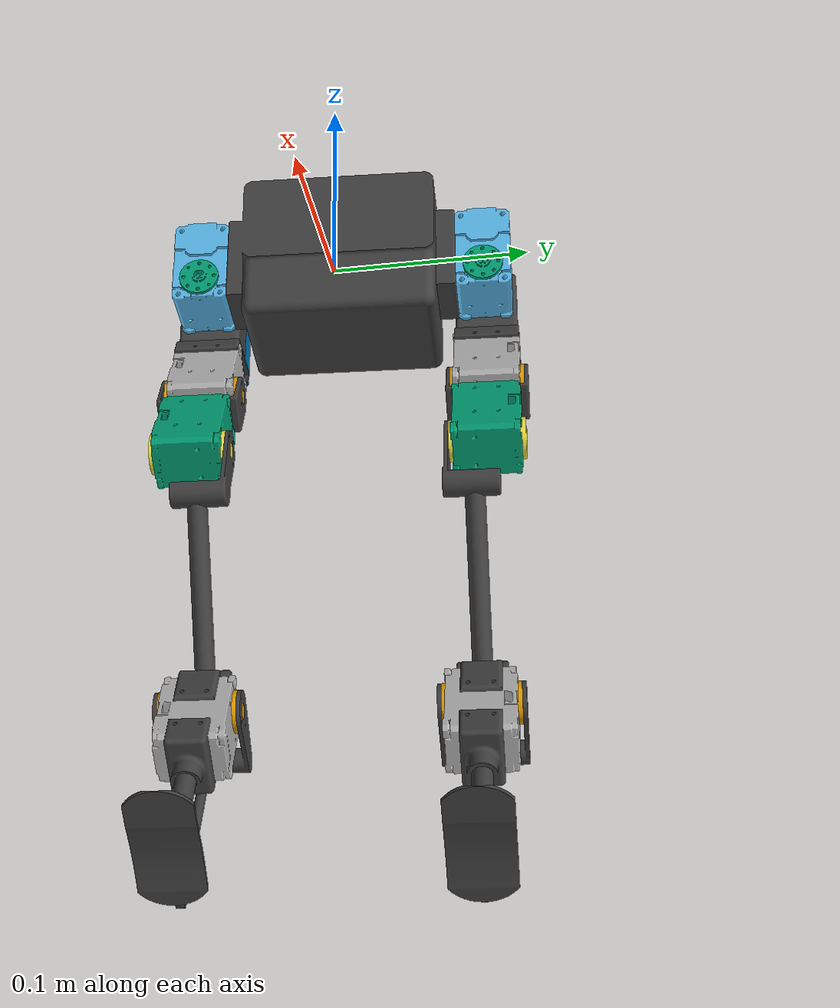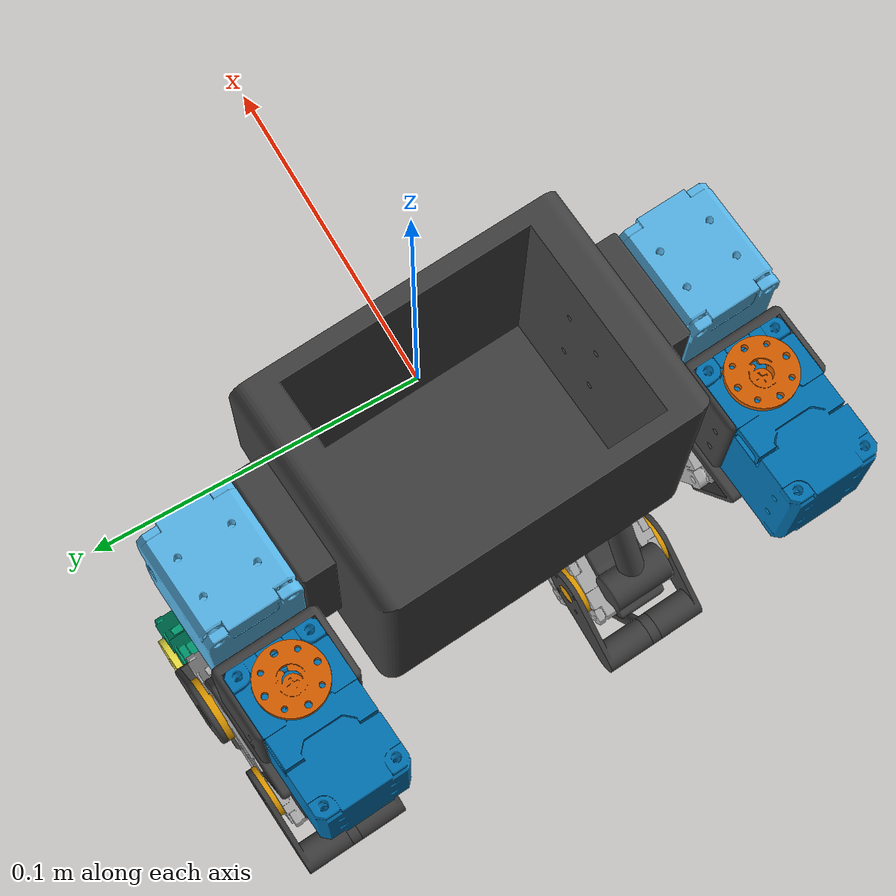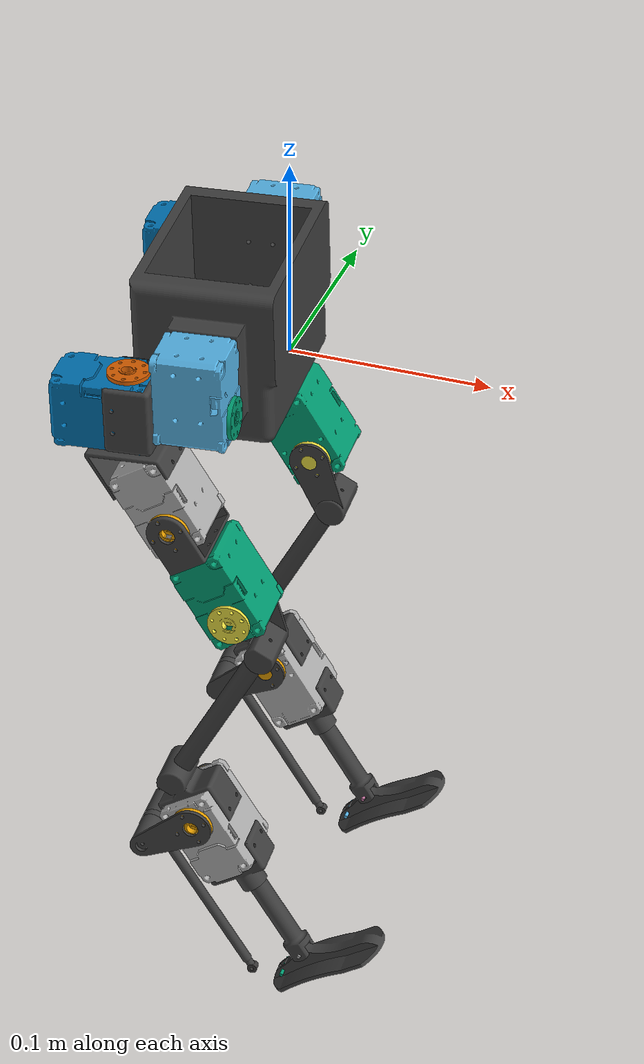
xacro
<?xml version="1.0" ?>
<robot name="bionic_biped_robot" xmlns:xacro="http://www.ros.org/wiki/xacro">

<xacro:include filename="$(find bionic_biped_robot_description)/urdf/materials.xacro" />
<xacro:include filename="$(find bionic_biped_robot_description)/urdf/bionic_biped_robot.trans" />
<link name="base_link">
  <inertial>
    <origin xyz="-0.029060836065414125 0.0002496064887810068 0.009364201848387986" rpy="0 0 0"/>
    <mass value="0.42566063723793834"/>
    <inertia ixx="0.000885" iyy="0.000452" izz="0.000847" ixy="3.1e-05" iyz="1e-06" ixz="-7e-06"/>
  </inertial>
  <visual>
    <origin xyz="0 0 0" rpy="0 0 0"/>
    <geometry>
      <mesh filename="package://bionic_biped_robot_description/meshes/base_link.stl" scale="0.001 0.001 0.001"/>
    </geometry>
    <material name="pa_11_nylon_hp_1130_eos_p_396_3d_"/>
  </visual>
  <collision>
    <origin xyz="0 0 0" rpy="0 0 0"/>
    <geometry>
      <mesh filename="package://bionic_biped_robot_description/meshes/base_link.stl" scale="0.001 0.001 0.001"/>
    </geometry>
  </collision>
</link>

<link name="R_hip_roll_xl_2">
  <inertial>
    <origin xyz="-0.004986969075831562 -0.014720577155303775 -0.015884992551365343" rpy="0 0 0"/>
    <mass value="0.040973661549071165"/>
    <inertia ixx="1e-05" iyy="1.1e-05" izz="6e-06" ixy="-0.0" iyz="-0.0" ixz="0.0"/>
  </inertial>
  <visual>
    <origin xyz="0.015186 0.058805 -0.032787" rpy="0 0 0"/>
    <geometry>
      <mesh filename="package://bionic_biped_robot_description/meshes/R_hip_roll_xl_2.stl" scale="0.001 0.001 0.001"/>
    </geometry>
    <material name=""/>
  </visual>
  <collision>
    <origin xyz="0.015186 0.058805 -0.032787" rpy="0 0 0"/>
    <geometry>
      <mesh filename="package://bionic_biped_robot_description/meshes/R_hip_roll_xl_2.stl" scale="0.001 0.001 0.001"/>
    </geometry>
  </collision>
</link>

<link name="R_hip_roll_2">
  <inertial>
    <origin xyz="0.01663231339614729 0.001207315463769884 0.0006989681967823" rpy="0 0 0"/>
    <mass value="0.001436423594975712"/>
    <inertia ixx="0.0" iyy="0.0" izz="0.0" ixy="-0.0" iyz="-0.0" ixz="-0.0"/>
  </inertial>
  <visual>
    <origin xyz="0.036253 0.074726 -0.004173" rpy="0 0 0"/>
    <geometry>
      <mesh filename="package://bionic_biped_robot_description/meshes/R_hip_roll_2.stl" scale="0.001 0.001 0.001"/>
    </geometry>
    <material name=""/>
  </visual>
  <collision>
    <origin xyz="0.036253 0.074726 -0.004173" rpy="0 0 0"/>
    <geometry>
      <mesh filename="package://bionic_biped_robot_description/meshes/R_hip_roll_2.stl" scale="0.001 0.001 0.001"/>
    </geometry>
  </collision>
</link>

<link name="hip_roll_bracket_1">
  <inertial>
    <origin xyz="-0.005977280037243966 -0.0004319145967555671 -0.00017857921335133736" rpy="0 0 0"/>
    <mass value="0.005303897131480488"/>
    <inertia ixx="1e-06" iyy="1e-06" izz="1e-06" ixy="0.0" iyz="0.0" ixz="0.0"/>
  </inertial>
  <visual>
    <origin xyz="0.038247 0.07487 -0.004114" rpy="0 0 0"/>
    <geometry>
      <mesh filename="package://bionic_biped_robot_description/meshes/hip_roll_bracket_1.stl" scale="0.001 0.001 0.001"/>
    </geometry>
    <material name="pa_11_nylon_hp_1130_eos_p_396_3d_"/>
  </visual>
  <collision>
    <origin xyz="0.038247 0.07487 -0.004114" rpy="0 0 0"/>
    <geometry>
      <mesh filename="package://bionic_biped_robot_description/meshes/hip_roll_bracket_1.stl" scale="0.001 0.001 0.001"/>
    </geometry>
  </collision>
</link>

<link name="R_hip_yaw_xl_2">
  <inertial>
    <origin xyz="-0.00699837936059209 -0.014828178635805975 -0.006687919117201799" rpy="0 0 0"/>
    <mass value="0.040973661549071165"/>
    <inertia ixx="6e-06" iyy="1.1e-05" izz="1e-05" ixy="-0.0" iyz="-0.0" ixz="-0.0"/>
  </inertial>
  <visual>
    <origin xyz="0.056649 0.061888 -0.00954" rpy="0 0 0"/>
    <geometry>
      <mesh filename="package://bionic_biped_robot_description/meshes/R_hip_yaw_xl_2.stl" scale="0.001 0.001 0.001"/>
    </geometry>
    <material name=""/>
  </visual>
  <collision>
    <origin xyz="0.056649 0.061888 -0.00954" rpy="0 0 0"/>
    <geometry>
      <mesh filename="package://bionic_biped_robot_description/meshes/R_hip_yaw_xl_2.stl" scale="0.001 0.001 0.001"/>
    </geometry>
  </collision>
</link>

<link name="R_hip_yaw_2">
  <inertial>
    <origin xyz="-0.0007017293152988338 2.2652475475268274e-05 0.016676361625966155" rpy="0 0 0"/>
    <mass value="0.001436423594975712"/>
    <inertia ixx="0.0" iyy="0.0" izz="0.0" ixy="0.0" iyz="-0.0" ixz="0.0"/>
  </inertial>
  <visual>
    <origin xyz="0.050948 0.075856 0.013273" rpy="0 0 0"/>
    <geometry>
      <mesh filename="package://bionic_biped_robot_description/meshes/R_hip_yaw_2.stl" scale="0.001 0.001 0.001"/>
    </geometry>
    <material name=""/>
  </visual>
  <collision>
    <origin xyz="0.050948 0.075856 0.013273" rpy="0 0 0"/>
    <geometry>
      <mesh filename="package://bionic_biped_robot_description/meshes/R_hip_yaw_2.stl" scale="0.001 0.001 0.001"/>
    </geometry>
  </collision>
</link>

<link name="hip_yaw_bracket_1">
  <inertial>
    <origin xyz="-0.0018463725124446412 -0.0001554031109584353 -0.005509867635975271" rpy="0 0 0"/>
    <mass value="0.0070036931272659"/>
    <inertia ixx="1e-06" iyy="1e-06" izz="2e-06" ixy="-0.0" iyz="-0.0" ixz="-0.0"/>
  </inertial>
  <visual>
    <origin xyz="0.050888 0.07586 0.015272" rpy="0 0 0"/>
    <geometry>
      <mesh filename="package://bionic_biped_robot_description/meshes/hip_yaw_bracket_1.stl" scale="0.001 0.001 0.001"/>
    </geometry>
    <material name="pa_11_nylon_hp_1130_eos_p_396_3d_"/>
  </visual>
  <collision>
    <origin xyz="0.050888 0.07586 0.015272" rpy="0 0 0"/>
    <geometry>
      <mesh filename="package://bionic_biped_robot_description/meshes/hip_yaw_bracket_1.stl" scale="0.001 0.001 0.001"/>
    </geometry>
  </collision>
</link>

<link name="R_hip_pitch_xl_2">
  <inertial>
    <origin xyz="-0.0034399795138700118 -0.005842710871260232 -0.02087660696885252" rpy="0 0 0"/>
    <mass value="0.040973661549071165"/>
    <inertia ixx="1e-05" iyy="1e-05" izz="8e-06" ixy="-0.0" iyz="0.0" ixz="2e-06"/>
  </inertial>
  <visual>
    <origin xyz="0.031688 0.068484 0.020992" rpy="0 0 0"/>
    <geometry>
      <mesh filename="package://bionic_biped_robot_description/meshes/R_hip_pitch_xl_2.stl" scale="0.001 0.001 0.001"/>
    </geometry>
    <material name=""/>
  </visual>
  <collision>
    <origin xyz="0.031688 0.068484 0.020992" rpy="0 0 0"/>
    <geometry>
      <mesh filename="package://bionic_biped_robot_description/meshes/R_hip_pitch_xl_2.stl" scale="0.001 0.001 0.001"/>
    </geometry>
  </collision>
</link>

<link name="R_hip_pitch_2">
  <inertial>
    <origin xyz="0.0010989591782883945 -0.016652782330582303 0.00024228339881331856" rpy="0 0 0"/>
    <mass value="0.001436423594975712"/>
    <inertia ixx="0.0" iyy="0.0" izz="0.0" ixy="0.0" iyz="0.0" ixz="-0.0"/>
  </inertial>
  <visual>
    <origin xyz="0.029885 0.057452 0.052346" rpy="0 0 0"/>
    <geometry>
      <mesh filename="package://bionic_biped_robot_description/meshes/R_hip_pitch_2.stl" scale="0.001 0.001 0.001"/>
    </geometry>
    <material name=""/>
  </visual>
  <collision>
    <origin xyz="0.029885 0.057452 0.052346" rpy="0 0 0"/>
    <geometry>
      <mesh filename="package://bionic_biped_robot_description/meshes/R_hip_pitch_2.stl" scale="0.001 0.001 0.001"/>
    </geometry>
  </collision>
</link>

<link name="hip_pitch_bracket_1">
  <inertial>
    <origin xyz="0.007539456611218846 -0.018546343314648363 -0.009937230800389683" rpy="0 0 0"/>
    <mass value="0.005694190208798132"/>
    <inertia ixx="2e-06" iyy="1e-06" izz="2e-06" ixy="0.0" iyz="0.0" ixz="0.0"/>
  </inertial>
  <visual>
    <origin xyz="0.030029 0.055457 0.052355" rpy="0 0 0"/>
    <geometry>
      <mesh filename="package://bionic_biped_robot_description/meshes/hip_pitch_bracket_1.stl" scale="0.001 0.001 0.001"/>
    </geometry>
    <material name="pa_11_nylon_hp_1130_eos_p_396_3d_"/>
  </visual>
  <collision>
    <origin xyz="0.030029 0.055457 0.052355" rpy="0 0 0"/>
    <geometry>
      <mesh filename="package://bionic_biped_robot_description/meshes/hip_pitch_bracket_1.stl" scale="0.001 0.001 0.001"/>
    </geometry>
  </collision>
</link>

<link name="R_knee_xl_2">
  <inertial>
    <origin xyz="0.005664421967444319 -0.005198050482948566 -0.02376056540835883" rpy="0 0 0"/>
    <mass value="0.040973661549071165"/>
    <inertia ixx="1e-05" iyy="1e-05" izz="8e-06" ixy="-0.0" iyz="0.0" ixz="2e-06"/>
  </inertial>
  <visual>
    <origin xyz="0.011949 0.067239 0.0649" rpy="0 0 0"/>
    <geometry>
      <mesh filename="package://bionic_biped_robot_description/meshes/R_knee_xl_2.stl" scale="0.001 0.001 0.001"/>
    </geometry>
    <material name=""/>
  </visual>
  <collision>
    <origin xyz="0.011949 0.067239 0.0649" rpy="0 0 0"/>
    <geometry>
      <mesh filename="package://bionic_biped_robot_description/meshes/R_knee_xl_2.stl" scale="0.001 0.001 0.001"/>
    </geometry>
  </collision>
</link>

<link name="R_knee_2">
  <inertial>
    <origin xyz="0.0010983606596026325 -0.01665312194227056 0.00024232495930738562" rpy="0 0 0"/>
    <mass value="0.001436423594975712"/>
    <inertia ixx="0.0" iyy="0.0" izz="0.0" ixy="0.0" iyz="0.0" ixz="-0.0"/>
  </inertial>
  <visual>
    <origin xyz="0.001041 0.055562 0.099138" rpy="0 0 0"/>
    <geometry>
      <mesh filename="package://bionic_biped_robot_description/meshes/R_knee_2.stl" scale="0.001 0.001 0.001"/>
    </geometry>
    <material name=""/>
  </visual>
  <collision>
    <origin xyz="0.001041 0.055562 0.099138" rpy="0 0 0"/>
    <geometry>
      <mesh filename="package://bionic_biped_robot_description/meshes/R_knee_2.stl" scale="0.001 0.001 0.001"/>
    </geometry>
  </collision>
</link>

<link name="knee_r_brecket_1">
  <inertial>
    <origin xyz="0.009879615617338428 -0.007544867889285538 -0.023592524067663698" rpy="0 0 0"/>
    <mass value="0.00786109169007575"/>
    <inertia ixx="1e-06" iyy="1e-06" izz="1e-06" ixy="0.0" iyz="-0.0" ixz="0.0"/>
  </inertial>
  <visual>
    <origin xyz="0.001185 0.053567 0.099146" rpy="0 0 0"/>
    <geometry>
      <mesh filename="package://bionic_biped_robot_description/meshes/knee_r_brecket_1.stl" scale="0.001 0.001 0.001"/>
    </geometry>
    <material name="pa_11_nylon_hp_1130_eos_p_396_3d_"/>
  </visual>
  <collision>
    <origin xyz="0.001185 0.053567 0.099146" rpy="0 0 0"/>
    <geometry>
      <mesh filename="package://bionic_biped_robot_description/meshes/knee_r_brecket_1.stl" scale="0.001 0.001 0.001"/>
    </geometry>
  </collision>
</link>

<link name="leg_upper_1">
  <inertial>
    <origin xyz="-0.023627209371366004 -0.0018812413574959413 -0.04402500093082774" rpy="0 0 0"/>
    <mass value="0.012719491840295135"/>
    <inertia ixx="8e-06" iyy="1.1e-05" izz="3e-06" ixy="-0.0" iyz="-0.0" ixz="-4e-06"/>
  </inertial>
  <visual>
    <origin xyz="-0.011989 0.065254 0.124731" rpy="0 0 0"/>
    <geometry>
      <mesh filename="package://bionic_biped_robot_description/meshes/leg_upper_1.stl" scale="0.001 0.001 0.001"/>
    </geometry>
    <material name="pa_11_nylon_hp_1130_eos_p_396_3d_"/>
  </visual>
  <collision>
    <origin xyz="-0.011989 0.065254 0.124731" rpy="0 0 0"/>
    <geometry>
      <mesh filename="package://bionic_biped_robot_description/meshes/leg_upper_1.stl" scale="0.001 0.001 0.001"/>
    </geometry>
  </collision>
</link>

<link name="lower_knee_link_2">
  <inertial>
    <origin xyz="0.005339367105491769 0.0003737553050349868 -0.003361608401626831" rpy="0 0 0"/>
    <mass value="0.010036812614450108"/>
    <inertia ixx="1e-06" iyy="2e-06" izz="1e-06" ixy="-0.0" iyz="0.0" ixz="0.0"/>
  </inertial>
  <visual>
    <origin xyz="0.035265 0.069017 0.212781" rpy="0 0 0"/>
    <geometry>
      <mesh filename="package://bionic_biped_robot_description/meshes/lower_knee_link_2.stl" scale="0.001 0.001 0.001"/>
    </geometry>
    <material name="pa_11_nylon_hp_1130_eos_p_396_3d_"/>
  </visual>
  <collision>
    <origin xyz="0.035265 0.069017 0.212781" rpy="0 0 0"/>
    <geometry>
      <mesh filename="package://bionic_biped_robot_description/meshes/lower_knee_link_2.stl" scale="0.001 0.001 0.001"/>
    </geometry>
  </collision>
</link>

<link name="R_ankle_xl_2">
  <inertial>
    <origin xyz="0.0023780861009838963 -0.14124865844405804 -0.013927734264633257" rpy="0 0 0"/>
    <mass value="0.040973661549071165"/>
    <inertia ixx="1e-05" iyy="1e-05" izz="8e-06" ixy="-0.0" iyz="0.0" ixz="2e-06"/>
  </inertial>
  <visual>
    <origin xyz="0.017665 -0.073986 0.225119" rpy="0 0 0"/>
    <geometry>
      <mesh filename="package://bionic_biped_robot_description/meshes/R_ankle_xl_2.stl" scale="0.001 0.001 0.001"/>
    </geometry>
    <material name=""/>
  </visual>
  <collision>
    <origin xyz="0.017665 -0.073986 0.225119" rpy="0 0 0"/>
    <geometry>
      <mesh filename="package://bionic_biped_robot_description/meshes/R_ankle_xl_2.stl" scale="0.001 0.001 0.001"/>
    </geometry>
  </collision>
</link>

<link name="R_ankle_2">
  <inertial>
    <origin xyz="0.0013009380681431246 -0.016640129255585098 -0.00010806382592756791" rpy="0 0 0"/>
    <mass value="0.001436423594975712"/>
    <inertia ixx="0.0" iyy="0.0" izz="0.0" ixy="0.0" iyz="-0.0" ixz="0.0"/>
  </inertial>
  <visual>
    <origin xyz="0.022902 0.05123 0.228702" rpy="0 0 0"/>
    <geometry>
      <mesh filename="package://bionic_biped_robot_description/meshes/R_ankle_2.stl" scale="0.001 0.001 0.001"/>
    </geometry>
    <material name=""/>
  </visual>
  <collision>
    <origin xyz="0.022902 0.05123 0.228702" rpy="0 0 0"/>
    <geometry>
      <mesh filename="package://bionic_biped_robot_description/meshes/R_ankle_2.stl" scale="0.001 0.001 0.001"/>
    </geometry>
  </collision>
</link>

<link name="ankle_link_1_2">
  <inertial>
    <origin xyz="-0.01961971128153585 -0.009167995860988223 -0.012464484549498916" rpy="0 0 0"/>
    <mass value="0.006084906833817184"/>
    <inertia ixx="1e-06" iyy="1e-06" izz="1e-06" ixy="-0.0" iyz="-0.0" ixz="-0.0"/>
  </inertial>
  <visual>
    <origin xyz="0.023046 0.049236 0.22871" rpy="0 0 0"/>
    <geometry>
      <mesh filename="package://bionic_biped_robot_description/meshes/ankle_link_1_2.stl" scale="0.001 0.001 0.001"/>
    </geometry>
    <material name="pa_11_nylon_hp_1130_eos_p_396_3d_"/>
  </visual>
  <collision>
    <origin xyz="0.023046 0.049236 0.22871" rpy="0 0 0"/>
    <geometry>
      <mesh filename="package://bionic_biped_robot_description/meshes/ankle_link_1_2.stl" scale="0.001 0.001 0.001"/>
    </geometry>
  </collision>
</link>

<link name="ankle_link_2_2">
  <inertial>
    <origin xyz="-0.018515364831153396 0.002677892138265192 -0.011304909272308539" rpy="0 0 0"/>
    <mass value="0.004445165114646534"/>
    <inertia ixx="0.0" iyy="1e-06" izz="1e-06" ixy="0.0" iyz="0.0" ixz="-0.0"/>
  </inertial>
  <visual>
    <origin xyz="0.020314 0.087137 0.228557" rpy="0 0 0"/>
    <geometry>
      <mesh filename="package://bionic_biped_robot_description/meshes/ankle_link_2_2.stl" scale="0.001 0.001 0.001"/>
    </geometry>
    <material name="pa_11_nylon_hp_1130_eos_p_396_3d_"/>
  </visual>
  <collision>
    <origin xyz="0.020314 0.087137 0.228557" rpy="0 0 0"/>
    <geometry>
      <mesh filename="package://bionic_biped_robot_description/meshes/ankle_link_2_2.stl" scale="0.001 0.001 0.001"/>
    </geometry>
  </collision>
</link>

<link name="R_bionic_biped_robot_ankle_bar_1">
  <inertial>
    <origin xyz="0.031959950767911874 -0.1356965791043112 -0.035255068475129575" rpy="0 0 0"/>
    <mass value="0.003337002701996774"/>
    <inertia ixx="2e-06" iyy="3e-06" izz="1e-06" ixy="-0.0" iyz="0.0" ixz="1e-06"/>
  </inertial>
  <visual>
    <origin xyz="0.057018 -0.067058 0.244955" rpy="0 0 0"/>
    <geometry>
      <mesh filename="package://bionic_biped_robot_description/meshes/R_bionic_biped_robot_ankle_bar_1.stl" scale="0.001 0.001 0.001"/>
    </geometry>
    <material name="pa_11_nylon_hp_1130_eos_p_396_3d_"/>
  </visual>
  <collision>
    <origin xyz="0.057018 -0.067058 0.244955" rpy="0 0 0"/>
    <geometry>
      <mesh filename="package://bionic_biped_robot_description/meshes/R_bionic_biped_robot_ankle_bar_1.stl" scale="0.001 0.001 0.001"/>
    </geometry>
  </collision>
</link>

<link name="R_ankle_bar_parts_1">
  <inertial>
    <origin xyz="0.00014428021092786425 -0.001994497521576738 8.022236874460908e-06" rpy="0 0 0"/>
    <mass value="0.0001072728227494817"/>
    <inertia ixx="0.0" iyy="0.0" izz="0.0" ixy="-0.0" iyz="-0.0" ixz="0.0"/>
  </inertial>
  <visual>
    <origin xyz="-0.003742 0.064746 0.327174" rpy="0 0 0"/>
    <geometry>
      <mesh filename="package://bionic_biped_robot_description/meshes/R_ankle_bar_parts_1.stl" scale="0.001 0.001 0.001"/>
    </geometry>
    <material name="_"/>
  </visual>
  <collision>
    <origin xyz="-0.003742 0.064746 0.327174" rpy="0 0 0"/>
    <geometry>
      <mesh filename="package://bionic_biped_robot_description/meshes/R_ankle_bar_parts_1.stl" scale="0.001 0.001 0.001"/>
    </geometry>
  </collision>
</link>

<link name="lower_link_1">
  <inertial>
    <origin xyz="-0.0064653639832924275 -0.006542113788295889 -0.015891072697331005" rpy="0 0 0"/>
    <mass value="0.008544769707383056"/>
    <inertia ixx="1e-06" iyy="1e-06" izz="1e-06" ixy="-0.0" iyz="-0.0" ixz="-0.0"/>
  </inertial>
  <visual>
    <origin xyz="-0.004663 0.060338 0.24499" rpy="0 0 0"/>
    <geometry>
      <mesh filename="package://bionic_biped_robot_description/meshes/lower_link_1.stl" scale="0.001 0.001 0.001"/>
    </geometry>
    <material name="pa_11_nylon_hp_1130_eos_p_396_3d_"/>
  </visual>
  <collision>
    <origin xyz="-0.004663 0.060338 0.24499" rpy="0 0 0"/>
    <geometry>
      <mesh filename="package://bionic_biped_robot_description/meshes/lower_link_1.stl" scale="0.001 0.001 0.001"/>
    </geometry>
  </collision>
</link>

<link name="leg_lower_2">
  <inertial>
    <origin xyz="0.016577282937612937 0.0010941529441703401 -0.024991797663463378" rpy="0 0 0"/>
    <mass value="0.007702697584770665"/>
    <inertia ixx="2e-06" iyy="2e-06" izz="1e-06" ixy="-0.0" iyz="0.0" ixz="1e-06"/>
  </inertial>
  <visual>
    <origin xyz="0.001098 0.066806 0.262026" rpy="0 0 0"/>
    <geometry>
      <mesh filename="package://bionic_biped_robot_description/meshes/leg_lower_2.stl" scale="0.001 0.001 0.001"/>
    </geometry>
    <material name="pa_11_nylon_hp_1130_eos_p_396_3d_"/>
  </visual>
  <collision>
    <origin xyz="0.001098 0.066806 0.262026" rpy="0 0 0"/>
    <geometry>
      <mesh filename="package://bionic_biped_robot_description/meshes/leg_lower_2.stl" scale="0.001 0.001 0.001"/>
    </geometry>
  </collision>
</link>

<link name="shaft_1">
  <inertial>
    <origin xyz="0.011021198643625819 -0.14106897092774662 0.001096999932918341" rpy="0 0 0"/>
    <mass value="5.79273242847201e-05"/>
    <inertia ixx="0.0" iyy="0.0" izz="0.0" ixy="0.0" iyz="0.0" ixz="-0.0"/>
  </inertial>
  <visual>
    <origin xyz="-0.018621 -0.076285 0.311091" rpy="0 0 0"/>
    <geometry>
      <mesh filename="package://bionic_biped_robot_description/meshes/shaft_1.stl" scale="0.001 0.001 0.001"/>
    </geometry>
    <material name=""/>
  </visual>
  <collision>
    <origin xyz="-0.018621 -0.076285 0.311091" rpy="0 0 0"/>
    <geometry>
      <mesh filename="package://bionic_biped_robot_description/meshes/shaft_1.stl" scale="0.001 0.001 0.001"/>
    </geometry>
  </collision>
</link>

<link name="foot_1">
  <inertial>
    <origin xyz="0.012733500599400645 -0.00610941412659672 -0.002202016875568147" rpy="0 0 0"/>
    <mass value="0.009360295877442892"/>
    <inertia ixx="1e-06" iyy="3e-06" izz="2e-06" ixy="-0.0" iyz="-0.0" ixz="-1e-06"/>
  </inertial>
  <visual>
    <origin xyz="-0.029139 0.057802 0.310022" rpy="0 0 0"/>
    <geometry>
      <mesh filename="package://bionic_biped_robot_description/meshes/foot_1.stl" scale="0.001 0.001 0.001"/>
    </geometry>
    <material name="pa_11_nylon_hp_1130_eos_p_396_3d_"/>
  </visual>
  <collision>
    <origin xyz="-0.029139 0.057802 0.310022" rpy="0 0 0"/>
    <geometry>
      <mesh filename="package://bionic_biped_robot_description/meshes/foot_1.stl" scale="0.001 0.001 0.001"/>
    </geometry>
  </collision>
</link>

<link name="L_hip_roll_xl_2">
  <inertial>
    <origin xyz="-0.007035358994863367 0.013704923001309606 -0.016000610474206135" rpy="0 0 0"/>
    <mass value="0.040973661549071165"/>
    <inertia ixx="1e-05" iyy="1.1e-05" izz="6e-06" ixy="-0.0" iyz="-0.0" ixz="0.0"/>
  </inertial>
  <visual>
    <origin xyz="0.023814 -0.060884 -0.032303" rpy="0 0 0"/>
    <geometry>
      <mesh filename="package://bionic_biped_robot_description/meshes/L_hip_roll_xl_2.stl" scale="0.001 0.001 0.001"/>
    </geometry>
    <material name=""/>
  </visual>
  <collision>
    <origin xyz="0.023814 -0.060884 -0.032303" rpy="0 0 0"/>
    <geometry>
      <mesh filename="package://bionic_biped_robot_description/meshes/L_hip_roll_xl_2.stl" scale="0.001 0.001 0.001"/>
    </geometry>
  </collision>
</link>

<link name="L_hip_roll_2">
  <inertial>
    <origin xyz="0.01663292347711554 0.0012078156203833013 0.0006983502739413925" rpy="0 0 0"/>
    <mass value="0.001436423594975712"/>
    <inertia ixx="0.0" iyy="0.0" izz="0.0" ixy="-0.0" iyz="-0.0" ixz="-0.0"/>
  </inertial>
  <visual>
    <origin xyz="0.04693 -0.073388 -0.003574" rpy="0 0 0"/>
    <geometry>
      <mesh filename="package://bionic_biped_robot_description/meshes/L_hip_roll_2.stl" scale="0.001 0.001 0.001"/>
    </geometry>
    <material name=""/>
  </visual>
  <collision>
    <origin xyz="0.04693 -0.073388 -0.003574" rpy="0 0 0"/>
    <geometry>
      <mesh filename="package://bionic_biped_robot_description/meshes/L_hip_roll_2.stl" scale="0.001 0.001 0.001"/>
    </geometry>
  </collision>
</link>

<link name="hip_roll_bracket_2">
  <inertial>
    <origin xyz="-0.005977669956275557 -0.000431414440142025 -0.000178197136192256" rpy="0 0 0"/>
    <mass value="0.005303897131480488"/>
    <inertia ixx="1e-06" iyy="1e-06" izz="1e-06" ixy="0.0" iyz="0.0" ixz="0.0"/>
  </inertial>
  <visual>
    <origin xyz="0.048923 -0.073244 -0.003514" rpy="0 0 0"/>
    <geometry>
      <mesh filename="package://bionic_biped_robot_description/meshes/hip_roll_bracket_2.stl" scale="0.001 0.001 0.001"/>
    </geometry>
    <material name="pa_11_nylon_hp_1130_eos_p_396_3d_"/>
  </visual>
  <collision>
    <origin xyz="0.048923 -0.073244 -0.003514" rpy="0 0 0"/>
    <geometry>
      <mesh filename="package://bionic_biped_robot_description/meshes/hip_roll_bracket_2.stl" scale="0.001 0.001 0.001"/>
    </geometry>
  </collision>
</link>

<link name="L_hip_yow_xl_2">
  <inertial>
    <origin xyz="-0.01972376927962364 0.16171232152080728 -0.007402537040042885" rpy="0 0 0"/>
    <mass value="0.040973661549071165"/>
    <inertia ixx="6e-06" iyy="1.1e-05" izz="1e-05" ixy="-0.0" iyz="-0.0" ixz="-0.0"/>
  </inertial>
  <visual>
    <origin xyz="0.0546 0.090314 -0.009655" rpy="0 0 0"/>
    <geometry>
      <mesh filename="package://bionic_biped_robot_description/meshes/L_hip_yow_xl_2.stl" scale="0.001 0.001 0.001"/>
    </geometry>
    <material name=""/>
  </visual>
  <collision>
    <origin xyz="0.0546 0.090314 -0.009655" rpy="0 0 0"/>
    <geometry>
      <mesh filename="package://bionic_biped_robot_description/meshes/L_hip_yow_xl_2.stl" scale="0.001 0.001 0.001"/>
    </geometry>
  </collision>
</link>

<link name="L_hip_yow_2">
  <inertial>
    <origin xyz="-0.0007021192343301744 2.31526320890324e-05 0.016675743703124895" rpy="0 0 0"/>
    <mass value="0.001436423594975712"/>
    <inertia ixx="0.0" iyy="0.0" izz="0.0" ixy="0.0" iyz="-0.0" ixz="0.0"/>
  </inertial>
  <visual>
    <origin xyz="0.061624 -0.072258 0.013872" rpy="0 0 0"/>
    <geometry>
      <mesh filename="package://bionic_biped_robot_description/meshes/L_hip_yow_2.stl" scale="0.001 0.001 0.001"/>
    </geometry>
    <material name=""/>
  </visual>
  <collision>
    <origin xyz="0.061624 -0.072258 0.013872" rpy="0 0 0"/>
    <geometry>
      <mesh filename="package://bionic_biped_robot_description/meshes/L_hip_yow_2.stl" scale="0.001 0.001 0.001"/>
    </geometry>
  </collision>
</link>

<link name="hip_yaw_bracket_2">
  <inertial>
    <origin xyz="-0.0018467624314757111 -0.00015590295434435297 -0.005510485558816482" rpy="0 0 0"/>
    <mass value="0.0070036931272659"/>
    <inertia ixx="1e-06" iyy="1e-06" izz="2e-06" ixy="-0.0" iyz="-0.0" ixz="-0.0"/>
  </inertial>
  <visual>
    <origin xyz="0.061564 -0.072255 0.015871" rpy="0 0 0"/>
    <geometry>
      <mesh filename="package://bionic_biped_robot_description/meshes/hip_yaw_bracket_2.stl" scale="0.001 0.001 0.001"/>
    </geometry>
    <material name="pa_11_nylon_hp_1130_eos_p_396_3d_"/>
  </visual>
  <collision>
    <origin xyz="0.061564 -0.072255 0.015871" rpy="0 0 0"/>
    <geometry>
      <mesh filename="package://bionic_biped_robot_description/meshes/hip_yaw_bracket_2.stl" scale="0.001 0.001 0.001"/>
    </geometry>
  </collision>
</link>

<link name="L_hip_pitch_xl_2">
  <inertial>
    <origin xyz="-0.014890326953640929 0.15323635688222426 -0.02151086042531752" rpy="0 0 0"/>
    <mass value="0.040973661549071165"/>
    <inertia ixx="1e-05" iyy="1e-05" izz="8e-06" ixy="-0.0" iyz="0.0" ixz="2e-06"/>
  </inertial>
  <visual>
    <origin xyz="0.030825 0.080452 0.020943" rpy="0 0 0"/>
    <geometry>
      <mesh filename="package://bionic_biped_robot_description/meshes/L_hip_pitch_xl_2.stl" scale="0.001 0.001 0.001"/>
    </geometry>
    <material name=""/>
  </visual>
  <collision>
    <origin xyz="0.030825 0.080452 0.020943" rpy="0 0 0"/>
    <geometry>
      <mesh filename="package://bionic_biped_robot_description/meshes/L_hip_pitch_xl_2.stl" scale="0.001 0.001 0.001"/>
    </geometry>
  </collision>
</link>

<link name="L_hip_pitch_2">
  <inertial>
    <origin xyz="-0.0013108933396089942 0.01663883507412956 0.00010192141907762464" rpy="0 0 0"/>
    <mass value="0.001436423594975712"/>
    <inertia ixx="0.0" iyy="0.0" izz="0.0" ixy="0.0" iyz="-0.0" ixz="0.0"/>
  </inertial>
  <visual>
    <origin xyz="0.038117 -0.056751 0.052809" rpy="0 0 0"/>
    <geometry>
      <mesh filename="package://bionic_biped_robot_description/meshes/L_hip_pitch_2.stl" scale="0.001 0.001 0.001"/>
    </geometry>
    <material name=""/>
  </visual>
  <collision>
    <origin xyz="0.038117 -0.056751 0.052809" rpy="0 0 0"/>
    <geometry>
      <mesh filename="package://bionic_biped_robot_description/meshes/L_hip_pitch_2.stl" scale="0.001 0.001 0.001"/>
    </geometry>
  </collision>
</link>

<link name="hip_pitch_bracket_2">
  <inertial>
    <origin xyz="0.0048070666921878405 0.019355156841966065 -0.010090848723229504" rpy="0 0 0"/>
    <mass value="0.005694190208798132"/>
    <inertia ixx="2e-06" iyy="1e-06" izz="2e-06" ixy="0.0" iyz="0.0" ixz="0.0"/>
  </inertial>
  <visual>
    <origin xyz="0.037973 -0.054756 0.052801" rpy="0 0 0"/>
    <geometry>
      <mesh filename="package://bionic_biped_robot_description/meshes/hip_pitch_bracket_2.stl" scale="0.001 0.001 0.001"/>
    </geometry>
    <material name="pa_11_nylon_hp_1130_eos_p_396_3d_"/>
  </visual>
  <collision>
    <origin xyz="0.037973 -0.054756 0.052801" rpy="0 0 0"/>
    <geometry>
      <mesh filename="package://bionic_biped_robot_description/meshes/hip_pitch_bracket_2.stl" scale="0.001 0.001 0.001"/>
    </geometry>
  </collision>
</link>

<link name="L_knee_xl_2">
  <inertial>
    <origin xyz="-0.005784925472326147 0.15388101727053538 -0.024393818864822753" rpy="0 0 0"/>
    <mass value="0.040973661549071165"/>
    <inertia ixx="1e-05" iyy="1e-05" izz="8e-06" ixy="-0.0" iyz="0.0" ixz="2e-06"/>
  </inertial>
  <visual>
    <origin xyz="0.011087 0.079207 0.064852" rpy="0 0 0"/>
    <geometry>
      <mesh filename="package://bionic_biped_robot_description/meshes/L_knee_xl_2.stl" scale="0.001 0.001 0.001"/>
    </geometry>
    <material name=""/>
  </visual>
  <collision>
    <origin xyz="0.011087 0.079207 0.064852" rpy="0 0 0"/>
    <geometry>
      <mesh filename="package://bionic_biped_robot_description/meshes/L_knee_xl_2.stl" scale="0.001 0.001 0.001"/>
    </geometry>
  </collision>
</link>

<link name="L_knee_2">
  <inertial>
    <origin xyz="-0.001311491858294345 0.016638495462440908 0.00010196297957255906" rpy="0 0 0"/>
    <mass value="0.001436423594975712"/>
    <inertia ixx="0.0" iyy="0.0" izz="0.0" ixy="0.0" iyz="-0.0" ixz="0.0"/>
  </inertial>
  <visual>
    <origin xyz="0.009273 -0.058641 0.099601" rpy="0 0 0"/>
    <geometry>
      <mesh filename="package://bionic_biped_robot_description/meshes/L_knee_2.stl" scale="0.001 0.001 0.001"/>
    </geometry>
    <material name=""/>
  </visual>
  <collision>
    <origin xyz="0.009273 -0.058641 0.099601" rpy="0 0 0"/>
    <geometry>
      <mesh filename="package://bionic_biped_robot_description/meshes/L_knee_2.stl" scale="0.001 0.001 0.001"/>
    </geometry>
  </collision>
</link>

<link name="knee_l_bracket_1">
  <inertial>
    <origin xyz="0.008709796933786283 0.008692816618159599 -0.023657439489187984" rpy="0 0 0"/>
    <mass value="0.007861091690075749"/>
    <inertia ixx="1e-06" iyy="1e-06" izz="1e-06" ixy="-0.0" iyz="0.0" ixz="0.0"/>
  </inertial>
  <visual>
    <origin xyz="0.00913 -0.056646 0.099593" rpy="0 0 0"/>
    <geometry>
      <mesh filename="package://bionic_biped_robot_description/meshes/knee_l_bracket_1.stl" scale="0.001 0.001 0.001"/>
    </geometry>
    <material name="pa_11_nylon_hp_1130_eos_p_396_3d_"/>
  </visual>
  <collision>
    <origin xyz="0.00913 -0.056646 0.099593" rpy="0 0 0"/>
    <geometry>
      <mesh filename="package://bionic_biped_robot_description/meshes/knee_l_bracket_1.stl" scale="0.001 0.001 0.001"/>
    </geometry>
  </collision>
</link>

<link name="leg_upper_2">
  <inertial>
    <origin xyz="-0.02362696582947057 -0.001880993739845585 -0.04402512704897532" rpy="0 0 0"/>
    <mass value="0.012719491840295135"/>
    <inertia ixx="8e-06" iyy="1.1e-05" izz="3e-06" ixy="-0.0" iyz="-0.0" ixz="-4e-06"/>
  </inertial>
  <visual>
    <origin xyz="-0.002247 -0.069894 0.125278" rpy="0 0 0"/>
    <geometry>
      <mesh filename="package://bionic_biped_robot_description/meshes/leg_upper_2.stl" scale="0.001 0.001 0.001"/>
    </geometry>
    <material name="pa_11_nylon_hp_1130_eos_p_396_3d_"/>
  </visual>
  <collision>
    <origin xyz="-0.002247 -0.069894 0.125278" rpy="0 0 0"/>
    <geometry>
      <mesh filename="package://bionic_biped_robot_description/meshes/leg_upper_2.stl" scale="0.001 0.001 0.001"/>
    </geometry>
  </collision>
</link>

<link name="lower_knee_link_1">
  <inertial>
    <origin xyz="-0.004402389352612182 0.13552200292268426 -0.00390873451977361" rpy="0 0 0"/>
    <mass value="0.010036812614450108"/>
    <inertia ixx="1e-06" iyy="2e-06" izz="1e-06" ixy="-0.0" iyz="0.0" ixz="0.0"/>
  </inertial>
  <visual>
    <origin xyz="0.035265 0.069017 0.212781" rpy="0 0 0"/>
    <geometry>
      <mesh filename="package://bionic_biped_robot_description/meshes/lower_knee_link_1.stl" scale="0.001 0.001 0.001"/>
    </geometry>
    <material name="pa_11_nylon_hp_1130_eos_p_396_3d_"/>
  </visual>
  <collision>
    <origin xyz="0.035265 0.069017 0.212781" rpy="0 0 0"/>
    <geometry>
      <mesh filename="package://bionic_biped_robot_description/meshes/lower_knee_link_1.stl" scale="0.001 0.001 0.001"/>
    </geometry>
  </collision>
</link>

<link name="L_ankle_xl_2">
  <inertial>
    <origin xyz="-0.008169875243508144 0.004862676860505885 -0.014529090337655204" rpy="0 0 0"/>
    <mass value="0.040973661549071165"/>
    <inertia ixx="1e-05" iyy="1e-05" izz="8e-06" ixy="-0.0" iyz="0.0" ixz="2e-06"/>
  </inertial>
  <visual>
    <origin xyz="0.016803 -0.062017 0.225071" rpy="0 0 0"/>
    <geometry>
      <mesh filename="package://bionic_biped_robot_description/meshes/L_ankle_xl_2.stl" scale="0.001 0.001 0.001"/>
    </geometry>
    <material name=""/>
  </visual>
  <collision>
    <origin xyz="0.016803 -0.062017 0.225071" rpy="0 0 0"/>
    <geometry>
      <mesh filename="package://bionic_biped_robot_description/meshes/L_ankle_xl_2.stl" scale="0.001 0.001 0.001"/>
    </geometry>
  </collision>
</link>

<link name="L_ankle_2">
  <inertial>
    <origin xyz="-0.0010890995168576952 0.016653740939449872 -0.00023643298842213056" rpy="0 0 0"/>
    <mass value="0.001436423594975712"/>
    <inertia ixx="0.0" iyy="0.0" izz="0.0" ixy="0.0" iyz="0.0" ixz="-0.0"/>
  </inertial>
  <visual>
    <origin xyz="0.030199 -0.050006 0.229112" rpy="0 0 0"/>
    <geometry>
      <mesh filename="package://bionic_biped_robot_description/meshes/L_ankle_2.stl" scale="0.001 0.001 0.001"/>
    </geometry>
    <material name=""/>
  </visual>
  <collision>
    <origin xyz="0.030199 -0.050006 0.229112" rpy="0 0 0"/>
    <geometry>
      <mesh filename="package://bionic_biped_robot_description/meshes/L_ankle_2.stl" scale="0.001 0.001 0.001"/>
    </geometry>
  </collision>
</link>

<link name="ankle_link_2_1">
  <inertial>
    <origin xyz="-0.017933107710460243 -0.0053969087618745 -0.01127278504476667" rpy="0 0 0"/>
    <mass value="0.004445165114646534"/>
    <inertia ixx="0.0" iyy="1e-06" izz="1e-06" ixy="-0.0" iyz="-0.0" ixz="-0.0"/>
  </inertial>
  <visual>
    <origin xyz="0.032788 -0.085913 0.229257" rpy="0 0 0"/>
    <geometry>
      <mesh filename="package://bionic_biped_robot_description/meshes/ankle_link_2_1.stl" scale="0.001 0.001 0.001"/>
    </geometry>
    <material name="pa_11_nylon_hp_1130_eos_p_396_3d_"/>
  </visual>
  <collision>
    <origin xyz="0.032788 -0.085913 0.229257" rpy="0 0 0"/>
    <geometry>
      <mesh filename="package://bionic_biped_robot_description/meshes/ankle_link_2_1.stl" scale="0.001 0.001 0.001"/>
    </geometry>
  </collision>
</link>

<link name="ankle_link_1_1">
  <inertial>
    <origin xyz="-0.020724300163594417 0.00615941228503341 -0.012526224080413095" rpy="0 0 0"/>
    <mass value="0.006084906833817184"/>
    <inertia ixx="1e-06" iyy="1e-06" izz="1e-06" ixy="0.0" iyz="0.0" ixz="-0.0"/>
  </inertial>
  <visual>
    <origin xyz="0.030056 -0.048011 0.229104" rpy="0 0 0"/>
    <geometry>
      <mesh filename="package://bionic_biped_robot_description/meshes/ankle_link_1_1.stl" scale="0.001 0.001 0.001"/>
    </geometry>
    <material name="pa_11_nylon_hp_1130_eos_p_396_3d_"/>
  </visual>
  <collision>
    <origin xyz="0.030056 -0.048011 0.229104" rpy="0 0 0"/>
    <geometry>
      <mesh filename="package://bionic_biped_robot_description/meshes/ankle_link_1_1.stl" scale="0.001 0.001 0.001"/>
    </geometry>
  </collision>
</link>

<link name="L_bionic_biped_robot_ankle_bar_v2_1">
  <inertial>
    <origin xyz="0.022218194309809196 -0.0005483314866620015 -0.035802194593276465" rpy="0 0 0"/>
    <mass value="0.0020522771844998615"/>
    <inertia ixx="1e-06" iyy="2e-06" izz="1e-06" ixy="-0.0" iyz="0.0" ixz="1e-06"/>
  </inertial>
  <visual>
    <origin xyz="0.057018 -0.067058 0.244955" rpy="0 0 0"/>
    <geometry>
      <mesh filename="package://bionic_biped_robot_description/meshes/L_bionic_biped_robot_ankle_bar_v2_1.stl" scale="0.001 0.001 0.001"/>
    </geometry>
    <material name="pa_11_nylon_hp_1130_eos_p_396_3d_"/>
  </visual>
  <collision>
    <origin xyz="0.057018 -0.067058 0.244955" rpy="0 0 0"/>
    <geometry>
      <mesh filename="package://bionic_biped_robot_description/meshes/L_bionic_biped_robot_ankle_bar_v2_1.stl" scale="0.001 0.001 0.001"/>
    </geometry>
  </collision>
</link>

<link name="lower_link_2">
  <inertial>
    <origin xyz="-0.007328120441395017 0.005427133829352837 -0.015939198815478006" rpy="0 0 0"/>
    <mass value="0.008544769707383056"/>
    <inertia ixx="1e-06" iyy="1e-06" izz="1e-06" ixy="-0.0" iyz="-0.0" ixz="-0.0"/>
  </inertial>
  <visual>
    <origin xyz="0.004216 -0.062841 0.245489" rpy="0 0 0"/>
    <geometry>
      <mesh filename="package://bionic_biped_robot_description/meshes/lower_link_2.stl" scale="0.001 0.001 0.001"/>
    </geometry>
    <material name="pa_11_nylon_hp_1130_eos_p_396_3d_"/>
  </visual>
  <collision>
    <origin xyz="0.004216 -0.062841 0.245489" rpy="0 0 0"/>
    <geometry>
      <mesh filename="package://bionic_biped_robot_description/meshes/lower_link_2.stl" scale="0.001 0.001 0.001"/>
    </geometry>
  </collision>
</link>

<link name="leg_lower_1">
  <inertial>
    <origin xyz="0.006836110873587015 0.13624211752369741 -0.025538458001914566" rpy="0 0 0"/>
    <mass value="0.007702697584770665"/>
    <inertia ixx="2e-06" iyy="2e-06" izz="1e-06" ixy="-0.0" iyz="0.0" ixz="1e-06"/>
  </inertial>
  <visual>
    <origin xyz="0.001947 0.066869 0.262552" rpy="0 0 0"/>
    <geometry>
      <mesh filename="package://bionic_biped_robot_description/meshes/leg_lower_1.stl" scale="0.001 0.001 0.001"/>
    </geometry>
    <material name="pa_11_nylon_hp_1130_eos_p_396_3d_"/>
  </visual>
  <collision>
    <origin xyz="0.001947 0.066869 0.262552" rpy="0 0 0"/>
    <geometry>
      <mesh filename="package://bionic_biped_robot_description/meshes/leg_lower_1.stl" scale="0.001 0.001 0.001"/>
    </geometry>
  </collision>
</link>

<link name="shaft_4">
  <inertial>
    <origin xyz="-0.0012793890264828217 0.005920710613647268 -0.0005501946259371393" rpy="0 0 0"/>
    <mass value="5.79273242847201e-05"/>
    <inertia ixx="0.0" iyy="0.0" izz="0.0" ixy="0.0" iyz="0.0" ixz="-0.0"/>
  </inertial>
  <visual>
    <origin xyz="-0.019483 -0.064317 0.311042" rpy="0 0 0"/>
    <geometry>
      <mesh filename="package://bionic_biped_robot_description/meshes/shaft_4.stl" scale="0.001 0.001 0.001"/>
    </geometry>
    <material name=""/>
  </visual>
  <collision>
    <origin xyz="-0.019483 -0.064317 0.311042" rpy="0 0 0"/>
    <geometry>
      <mesh filename="package://bionic_biped_robot_description/meshes/shaft_4.stl" scale="0.001 0.001 0.001"/>
    </geometry>
  </collision>
</link>

<link name="foot_2">
  <inertial>
    <origin xyz="0.00028891292945123007 0.14287626741480924 -0.0038562114343241305" rpy="0 0 0"/>
    <mass value="0.009360295877442892"/>
    <inertia ixx="1e-06" iyy="3e-06" izz="2e-06" ixy="-0.0" iyz="-0.0" ixz="-1e-06"/>
  </inertial>
  <visual>
    <origin xyz="-0.030145 0.071766 0.309966" rpy="0 0 0"/>
    <geometry>
      <mesh filename="package://bionic_biped_robot_description/meshes/foot_2.stl" scale="0.001 0.001 0.001"/>
    </geometry>
    <material name="pa_11_nylon_hp_1130_eos_p_396_3d_"/>
  </visual>
  <collision>
    <origin xyz="-0.030145 0.071766 0.309966" rpy="0 0 0"/>
    <geometry>
      <mesh filename="package://bionic_biped_robot_description/meshes/foot_2.stl" scale="0.001 0.001 0.001"/>
    </geometry>
  </collision>
</link>

<link name="L_ankle_bar_parts_v1_1">
  <inertial>
    <origin xyz="-0.00014421668719208185 0.001995149197513729 -8.089303608793674e-06" rpy="0 0 0"/>
    <mass value="0.0005178915489442998"/>
    <inertia ixx="0.0" iyy="0.0" izz="0.0" ixy="-0.0" iyz="-0.0" ixz="0.0"/>
  </inertial>
  <visual>
    <origin xyz="0.005711 -0.066409 0.327705" rpy="0 0 0"/>
    <geometry>
      <mesh filename="package://bionic_biped_robot_description/meshes/L_ankle_bar_parts_v1_1.stl" scale="0.001 0.001 0.001"/>
    </geometry>
    <material name="pa_11_nylon_hp_1130_eos_p_396_3d_"/>
  </visual>
  <collision>
    <origin xyz="0.005711 -0.066409 0.327705" rpy="0 0 0"/>
    <geometry>
      <mesh filename="package://bionic_biped_robot_description/meshes/L_ankle_bar_parts_v1_1.stl" scale="0.001 0.001 0.001"/>
    </geometry>
  </collision>
</link>

<link name="shaft_3">
  <inertial>
    <origin xyz="-0.011438438714879722 0.13502168553881624 -0.0015977410418839266" rpy="0 0 0"/>
    <mass value="5.79273242847201e-05"/>
    <inertia ixx="0.0" iyy="0.0" izz="0.0" ixy="0.0" iyz="0.0" ixz="-0.0"/>
  </inertial>
  <visual>
    <origin xyz="-0.020577 0.065492 0.323481" rpy="0 0 0"/>
    <geometry>
      <mesh filename="package://bionic_biped_robot_description/meshes/shaft_3.stl" scale="0.001 0.001 0.001"/>
    </geometry>
    <material name=""/>
  </visual>
  <collision>
    <origin xyz="-0.020577 0.065492 0.323481" rpy="0 0 0"/>
    <geometry>
      <mesh filename="package://bionic_biped_robot_description/meshes/shaft_3.stl" scale="0.001 0.001 0.001"/>
    </geometry>
  </collision>
</link>

<link name="shaft_5">
  <inertial>
    <origin xyz="1.48955198259193e-07 3.99741982570756e-09 4.535168419694813e-07" rpy="0 0 0"/>
    <mass value="5.79273242847201e-05"/>
    <inertia ixx="0.0" iyy="0.0" izz="0.0" ixy="0.0" iyz="0.0" ixz="-0.0"/>
  </inertial>
  <visual>
    <origin xyz="-0.020577 0.065492 0.323481" rpy="0 0 0"/>
    <geometry>
      <mesh filename="package://bionic_biped_robot_description/meshes/shaft_5.stl" scale="0.001 0.001 0.001"/>
    </geometry>
    <material name=""/>
  </visual>
  <collision>
    <origin xyz="-0.020577 0.065492 0.323481" rpy="0 0 0"/>
    <geometry>
      <mesh filename="package://bionic_biped_robot_description/meshes/shaft_5.stl" scale="0.001 0.001 0.001"/>
    </geometry>
  </collision>
</link>

<joint name="« 226" type="fixed">
  <origin xyz="-0.015186 -0.058805 0.032787" rpy="0 0 0"/>
  <parent link="base_link"/>
  <child link="R_hip_roll_xl_2"/>
</joint>

<joint name="ñ] 227" type="continuous">
  <origin xyz="-0.021067 -0.015921 -0.028614" rpy="0 0 0"/>
  <parent link="R_hip_roll_xl_2"/>
  <child link="R_hip_roll_2"/>
  <axis xyz="0.996962 0.071983 0.029745"/>
</joint>

<joint name="« 228" type="fixed">
  <origin xyz="-0.001994 -0.000144 -5.9e-05" rpy="0 0 0"/>
  <parent link="R_hip_roll_2"/>
  <child link="hip_roll_bracket_1"/>
</joint>

<joint name="« 229" type="fixed">
  <origin xyz="-0.018402 0.012982 0.005426" rpy="0 0 0"/>
  <parent link="hip_roll_bracket_1"/>
  <child link="R_hip_yaw_xl_2"/>
</joint>

<joint name="ñ] 230" type="continuous">
  <origin xyz="0.005701 -0.013968 -0.022813" rpy="0 0 0"/>
  <parent link="R_hip_yaw_xl_2"/>
  <child link="R_hip_yaw_2"/>
  <axis xyz="-0.029958 0.001887 0.999549"/>
</joint>

<joint name="« 231" type="fixed">
  <origin xyz="6e-05 -4e-06 -0.001999" rpy="0 0 0"/>
  <parent link="R_hip_yaw_2"/>
  <child link="hip_yaw_bracket_1"/>
</joint>

<joint name="« 232" type="fixed">
  <origin xyz="0.0192 0.007376 -0.00572" rpy="0 0 0"/>
  <parent link="hip_yaw_bracket_1"/>
  <child link="R_hip_pitch_xl_2"/>
</joint>

<joint name="ñ] 233" type="continuous">
  <origin xyz="0.001803 0.011032 -0.031354" rpy="0 0 0"/>
  <parent link="R_hip_pitch_xl_2"/>
  <child link="R_hip_pitch_2"/>
  <axis xyz="0.071895 -0.997404 0.004038"/>
</joint>

<joint name="« 234" type="fixed">
  <origin xyz="-0.000144 0.001995 -9e-06" rpy="0 0 0"/>
  <parent link="R_hip_pitch_2"/>
  <child link="hip_pitch_bracket_1"/>
</joint>

<joint name="« 235" type="fixed">
  <origin xyz="0.01808 -0.011782 -0.012545" rpy="0 0 0"/>
  <parent link="hip_pitch_bracket_1"/>
  <child link="R_knee_xl_2"/>
</joint>

<joint name="ñ] 236" type="continuous">
  <origin xyz="0.010908 0.011677 -0.034238" rpy="0 0 0"/>
  <parent link="R_knee_xl_2"/>
  <child link="R_knee_2"/>
  <axis xyz="0.071895 -0.997404 0.004038"/>
</joint>

<joint name="« 237" type="fixed">
  <origin xyz="-0.000144 0.001995 -8e-06" rpy="0 0 0"/>
  <parent link="R_knee_2"/>
  <child link="knee_r_brecket_1"/>
</joint>

<joint name="« 238" type="fixed">
  <origin xyz="0.013174 -0.011687 -0.025585" rpy="0 0 0"/>
  <parent link="knee_r_brecket_1"/>
  <child link="leg_upper_1"/>
</joint>

<joint name="« 239" type="fixed">
  <origin xyz="-0.047254 -0.003763 -0.08805" rpy="0 0 0"/>
  <parent link="leg_upper_1"/>
  <child link="lower_knee_link_2"/>
</joint>

<joint name="« 240" type="fixed">
  <origin xyz="0.0176 0.143003 -0.012338" rpy="0 0 0"/>
  <parent link="lower_knee_link_2"/>
  <child link="R_ankle_xl_2"/>
</joint>

<joint name="ñ] 241" type="continuous">
  <origin xyz="-0.005237 -0.125216 -0.003583" rpy="0 0 0"/>
  <parent link="R_ankle_xl_2"/>
  <child link="R_ankle_2"/>
  <axis xyz="0.071895 -0.997404 0.004038"/>
</joint>

<joint name="« 242" type="fixed">
  <origin xyz="-0.000144 0.001994 -8e-06" rpy="0 0 0"/>
  <parent link="R_ankle_2"/>
  <child link="ankle_link_1_2"/>
</joint>

<joint name="« 243" type="fixed">
  <origin xyz="0.002588 -0.035907 0.000145" rpy="0 0 0"/>
  <parent link="R_ankle_2"/>
  <child link="ankle_link_2_2"/>
</joint>

<joint name="ñ] 244" type="continuous">
  <origin xyz="-0.036704 0.154195 -0.016398" rpy="0 0 0"/>
  <parent link="ankle_link_2_2"/>
  <child link="R_bionic_biped_robot_ankle_bar_1"/>
  <axis xyz="0.071895 -0.997404 0.004038"/>
</joint>

<joint name="ñ] 245" type="continuous">
  <origin xyz="0.06076 -0.131804 -0.082219" rpy="0 0 0"/>
  <parent link="R_bionic_biped_robot_ankle_bar_1"/>
  <child link="R_ankle_bar_parts_1"/>
  <axis xyz="-0.071895 0.997404 -0.004038"/>
</joint>

<joint name="« 246" type="fixed">
  <origin xyz="0.022328 -0.134324 -0.019871" rpy="0 0 0"/>
  <parent link="R_ankle_xl_2"/>
  <child link="lower_link_1"/>
</joint>

<joint name="« 247" type="fixed">
  <origin xyz="-0.005761 -0.006468 -0.017036" rpy="0 0 0"/>
  <parent link="lower_link_1"/>
  <child link="leg_lower_2"/>
</joint>

<joint name="« 248" type="fixed">
  <origin xyz="0.019719 0.143091 -0.049065" rpy="0 0 0"/>
  <parent link="leg_lower_2"/>
  <child link="shaft_1"/>
</joint>

<joint name="ñ] 249" type="continuous">
  <origin xyz="0.010518 -0.134087 0.001069" rpy="0 0 0"/>
  <parent link="shaft_1"/>
  <child link="foot_1"/>
  <axis xyz="-0.071895 0.997404 -0.004038"/>
</joint>

<joint name="« 270" type="fixed">
  <origin xyz="-0.023814 0.060884 0.032303" rpy="0 0 0"/>
  <parent link="base_link"/>
  <child link="L_hip_roll_xl_2"/>
</joint>

<joint name="ñ] 271" type="continuous">
  <origin xyz="-0.023116 0.012504 -0.028729" rpy="0 0 0"/>
  <parent link="L_hip_roll_xl_2"/>
  <child link="L_hip_roll_2"/>
  <axis xyz="0.996962 0.071983 0.029745"/>
</joint>

<joint name="« 272" type="fixed">
  <origin xyz="-0.001993 -0.000144 -6e-05" rpy="0 0 0"/>
  <parent link="L_hip_roll_2"/>
  <child link="hip_roll_bracket_2"/>
</joint>

<joint name="« 273" type="fixed">
  <origin xyz="-0.005677 -0.163558 0.006141" rpy="0 0 0"/>
  <parent link="hip_roll_bracket_2"/>
  <child link="L_hip_yow_xl_2"/>
</joint>

<joint name="ñ] 274" type="continuous">
  <origin xyz="-0.007024 0.162572 -0.023527" rpy="0 0 0"/>
  <parent link="L_hip_yow_xl_2"/>
  <child link="L_hip_yow_2"/>
  <axis xyz="-0.029958 0.001887 0.999549"/>
</joint>

<joint name="« 275" type="fixed">
  <origin xyz="6e-05 -3e-06 -0.001999" rpy="0 0 0"/>
  <parent link="L_hip_yow_2"/>
  <child link="hip_yaw_bracket_2"/>
</joint>

<joint name="« 276" type="fixed">
  <origin xyz="0.030739 -0.152707 -0.005072" rpy="0 0 0"/>
  <parent link="hip_yaw_bracket_2"/>
  <child link="L_hip_pitch_xl_2"/>
</joint>

<joint name="ñ] 277" type="continuous">
  <origin xyz="-0.007292 0.137203 -0.031866" rpy="0 0 0"/>
  <parent link="L_hip_pitch_xl_2"/>
  <child link="L_hip_pitch_2"/>
  <axis xyz="-0.071895 0.997404 -0.004038"/>
</joint>

<joint name="« 278" type="fixed">
  <origin xyz="0.000144 -0.001995 8e-06" rpy="0 0 0"/>
  <parent link="L_hip_pitch_2"/>
  <child link="hip_pitch_bracket_2"/>
</joint>

<joint name="« 279" type="fixed">
  <origin xyz="0.026886 -0.133963 -0.012051" rpy="0 0 0"/>
  <parent link="hip_pitch_bracket_2"/>
  <child link="L_knee_xl_2"/>
</joint>

<joint name="ñ] 280" type="continuous">
  <origin xyz="0.001814 0.137848 -0.034749" rpy="0 0 0"/>
  <parent link="L_knee_xl_2"/>
  <child link="L_knee_2"/>
  <axis xyz="-0.071895 0.997404 -0.004038"/>
</joint>

<joint name="« 281" type="fixed">
  <origin xyz="0.000143 -0.001995 8e-06" rpy="0 0 0"/>
  <parent link="L_knee_2"/>
  <child link="knee_l_bracket_1"/>
</joint>

<joint name="« 282" type="fixed">
  <origin xyz="0.011377 0.013248 -0.025685" rpy="0 0 0"/>
  <parent link="knee_l_bracket_1"/>
  <child link="leg_upper_2"/>
</joint>

<joint name="« 283" type="fixed">
  <origin xyz="-0.037512 -0.138911 -0.087503" rpy="0 0 0"/>
  <parent link="leg_upper_2"/>
  <child link="lower_knee_link_1"/>
</joint>

<joint name="« 284" type="fixed">
  <origin xyz="0.018462 0.131034 -0.01229" rpy="0 0 0"/>
  <parent link="lower_knee_link_1"/>
  <child link="L_ankle_xl_2"/>
</joint>

<joint name="ñ] 285" type="continuous">
  <origin xyz="-0.013396 -0.012011 -0.004041" rpy="0 0 0"/>
  <parent link="L_ankle_xl_2"/>
  <child link="L_ankle_2"/>
  <axis xyz="-0.071895 0.997404 -0.004038"/>
</joint>

<joint name="« 286" type="fixed">
  <origin xyz="-0.002589 0.035907 -0.000145" rpy="0 0 0"/>
  <parent link="L_ankle_2"/>
  <child link="ankle_link_2_1"/>
</joint>

<joint name="« 287" type="fixed">
  <origin xyz="0.000143 -0.001995 8e-06" rpy="0 0 0"/>
  <parent link="L_ankle_2"/>
  <child link="ankle_link_1_1"/>
</joint>

<joint name="ñ] 288" type="continuous">
  <origin xyz="-0.02423 -0.018855 -0.015698" rpy="0 0 0"/>
  <parent link="ankle_link_2_1"/>
  <child link="L_bionic_biped_robot_ankle_bar_v2_1"/>
  <axis xyz="-0.071895 0.997404 -0.004038"/>
</joint>

<joint name="« 289" type="fixed">
  <origin xyz="0.012587 0.000824 -0.020418" rpy="0 0 0"/>
  <parent link="L_ankle_xl_2"/>
  <child link="lower_link_2"/>
</joint>

<joint name="« 290" type="fixed">
  <origin xyz="0.002269 -0.12971 -0.017063" rpy="0 0 0"/>
  <parent link="lower_link_2"/>
  <child link="leg_lower_1"/>
</joint>

<joint name="« 291" type="fixed">
  <origin xyz="0.02143 0.131186 -0.04849" rpy="0 0 0"/>
  <parent link="leg_lower_1"/>
  <child link="shaft_4"/>
</joint>

<joint name="ñ] 292" type="continuous">
  <origin xyz="0.010662 -0.136083 0.001076" rpy="0 0 0"/>
  <parent link="shaft_4"/>
  <child link="foot_2"/>
  <axis xyz="-0.071895 0.997404 -0.004038"/>
</joint>

<joint name="ñ] 294" type="continuous">
  <origin xyz="0.051307 -0.000649 -0.08275" rpy="0 0 0"/>
  <parent link="L_bionic_biped_robot_ankle_bar_v2_1"/>
  <child link="L_ankle_bar_parts_v1_1"/>
  <axis xyz="-0.071895 0.997404 -0.004038"/>
</joint>

<joint name="« 295" type="fixed">
  <origin xyz="-0.009568 0.006274 -0.013515" rpy="0 0 0"/>
  <parent link="foot_2"/>
  <child link="shaft_3"/>
</joint>

<joint name="« 296" type="fixed">
  <origin xyz="-0.008562 -0.00769 -0.013459" rpy="0 0 0"/>
  <parent link="foot_1"/>
  <child link="shaft_5"/>
</joint>

</robot>

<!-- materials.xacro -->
<robot name="bionic_biped_robot" xmlns:xacro="http://www.ros.org/wiki/xacro" >

<material name="silver_default">
  <color rgba="0.700 0.700 0.700 1.000"/>
</material>
<material name="pa_11_nylon_hp_1130_eos_p_396_3d_">
  <color rgba="0.24705882352941178 0.24705882352941178 0.24705882352941178 1.0"/>
</material>
<material name="">
  <color rgba="0.3137254901960784 0.3137254901960784 0.3137254901960784 1.0"/>
</material>
<material name="_">
  <color rgba="0.23137254901960785 0.2235294117647059 0.2235294117647059 1.0"/>
</material>

</robot>
